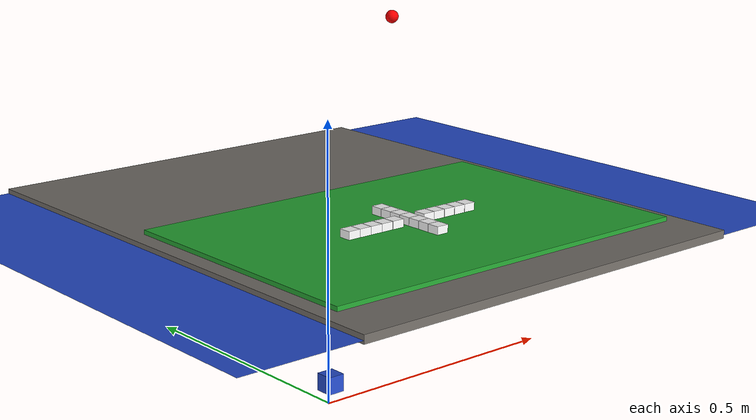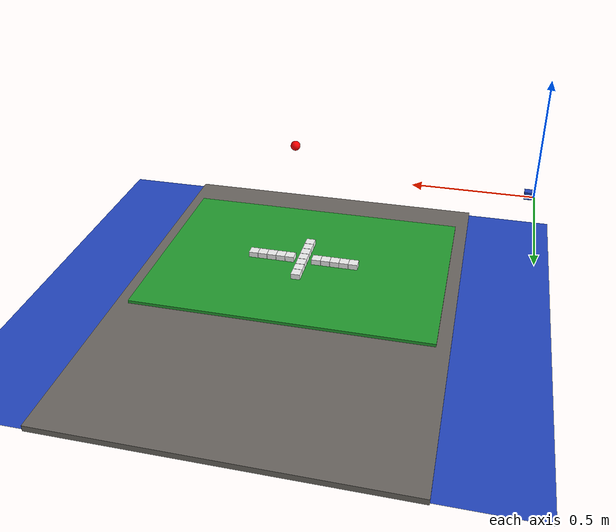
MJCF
<?xml version="1.0" encoding="utf-8"?>
<mujoco>
	<compiler angle="radian" coordinate="local" meshdir="../stls/dobot" texturedir="../textures"></compiler>
	<option solver="Newton" timestep="0.002">
		<flag warmstart="enable"></flag>
	</option>
	<visual>
		<quality shadowsize="4096"></quality>
	</visual>

	<size njmax="8500" nconmax="4500"></size>

	<include file="shared_pick.xml"></include>

	<worldbody>

		<include file="base.xml"></include>

		<include file="robot_pick.xml"></include>

		<body name="object0" pos="0.025 0.025 0.025">
			<joint name="object0:joint" type="free" damping="0.01"></joint>
			<geom size="0.0160 0.0160 0.0160" type="box" name="object0" material="blue_block_mat" mass="0.8" condim="6" solimp="1.0 1.0 0.01"  solref="0.01 1" ></geom>
			<site name="site:object0" pos="0 0 0" size="0.012 0.012 0.012" rgba="0 1 0 1" type="sphere"></site>
		</body>

		<body name="verticalwall" pos="0.8 0.784 0.025">
				<geom pos="0 0 0" name="object1" class="wall"/>
				<geom pos="0 -0.033 0" name="object2" class="wall"/>
				<geom pos="0 -0.066 0" name="object4" class="wall"/>
				<geom pos="0 -0.099 0" name="object5" class="wall"/>
				<geom pos="0 -0.132 0" name="object6" class="wall"/>
				<geom pos="0 -0.165 0" name="object7" class="wall"/>
				<geom pos="0 -0.198 0" name="object8" class="wall"/>
		</body>

		<body name="horizontalwall1" pos="0.62 0.685 0.025">
				<geom pos="0 0 0" name="object9" class="wall"/>
				<geom pos="0.033 0 0" name="object10" class="wall"/>
				<geom pos="0.066 0 0" name="object11" class="wall"/>
				<geom pos="0.099 0 0" name="object12" class="wall"/>
				<geom pos="0.132 0 0" name="object13" class="wall"/>
		</body>

		<body name="horizontalwall2" pos="0.98 0.685 0.025">
				<geom pos="0 0 0" name="object14" class="wall"/>
				<geom pos="-0.033 0 0" name="object15" class="wall"/>
				<geom pos="-0.066 0 0" name="object16" class="wall"/>
				<geom pos="-0.099 0 0" name="object17" class="wall"/>
				<geom pos="-0.132 0 0" name="object18" class="wall"/>
		</body>

	</worldbody>

</mujoco>

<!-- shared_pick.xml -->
<mujoco>
    <asset>
        <texture type="skybox" builtin="gradient" rgb1="0 0 0" rgb2="0.5 0.5 1" width="32" height="32"></texture>
        <texture name="texture_block" file="block.png" gridsize="3 4" gridlayout=".U..LFRB.D.."></texture>
        <texture name="red_block" file="block_red.png" gridsize="3 4" gridlayout=".U..LFRB.D.."></texture>
        <texture name="yellow_block" file="block_yellow.png" gridsize="3 4" gridlayout=".U..LFRB.D.."></texture>
        <texture name="green_block" file="block_green.png" gridsize="3 4" gridlayout=".U..LFRB.D.."></texture>
        <texture name="blue_block" file="block_blue.png" gridsize="3 4" gridlayout=".U..LFRB.D.."></texture>
        <texture name="pink_block" file="block_pink.png" gridsize="3 4" gridlayout=".U..LFRB.D.."></texture>
        <texture name="magenta_block" file="block_magenta.png" gridsize="3 4" gridlayout=".U..LFRB.D.."></texture>
        <texture name="dark_blue_block" file="block_dark_blue.png" gridsize="3 4" gridlayout=".U..LFRB.D.."></texture>
        <texture name="dark_green_block" file="block_dark_green.png" gridsize="3 4" gridlayout=".U..LFRB.D.."></texture>
        <texture name="arm_tex" file="arm.png" type="2d"></texture>
        <texture name="base_tex" file="base.png" type="2d"></texture>
        <texture name="base_blue_tex" file="base_blue.png" type="2d"></texture>
        <texture name="base_green_tex" file="base_green.png" type="2d"></texture>
        <texture name="gripper_tex" file="gripper.png" type="2d"></texture>

        <material name="table_mat" specular="0" shininess="0.5" reflectance="0" rgba="0.6 0.6 0.6 1" texture="base_tex"></material>
        <material name="floor_mat" specular="0" shininess="0.5" reflectance="0" rgba="1 1 1 1" texture="base_blue_tex"></material>
        <material name="tray_mat" specular="0" shininess="0.5" reflectance="0" rgba="1 1 1 1" texture="base_green_tex"></material>
        <material name="block_mat" specular="0" shininess="0.5" reflectance="0" rgba="1 1 1 1" texture="texture_block"></material>
        <material name="red_block_mat" specular="0" shininess="0.5" reflectance="0" rgba="1 1 1 1" texture="red_block"></material>
        <material name="yellow_block_mat" specular="0" shininess="0.5" reflectance="0" rgba="1 1 1 1" texture="yellow_block"></material>
        <material name="green_block_mat" specular="0" shininess="0.5" reflectance="0" rgba="1 1 1 1" texture="green_block"></material>
        <material name="blue_block_mat" specular="0" shininess="0.5" reflectance="0" rgba="1 1 1 1" texture="blue_block"></material>
        <material name="dark_blue_block_mat" specular="0" shininess="0.5" reflectance="0" rgba="1 1 1 1" texture="dark_blue_block"></material>
        <material name="dark_green_block_mat" specular="0" shininess="0.5" reflectance="0" rgba="1 1 1 1" texture="dark_green_block"></material>
        <material name="pink_block_mat" specular="0" shininess="0.5" reflectance="0" rgba="1 1 1 1" texture="pink_block"></material>
        <material name="magenta_block_mat" specular="0" shininess="0.5" reflectance="0" rgba="1 1 1 1" texture="magenta_block"></material>
        <material name="puck_mat" specular="0" shininess="0.5" reflectance="0" rgba="0.2 0.2 0.2 1" texture="base_tex"></material>
        <material name="dobot_mat" shininess="0.03" specular="0.4" rgba ="1 1 1 0"></material>
        <material name="arm_mat" shininess="0.03" specular="0.4" texture="arm_tex"></material>
        <material name="gripper_mat" shininess="0.03" specular="0.4" texture="gripper_tex"></material>

        <mesh file="fpart1.stl" name="dobot:rear_arm_link" scale="0.002 0.002 0.002"></mesh>
		<mesh file="fpart2.stl" name="dobot:front_arm_link" scale="0.002 0.002 0.002"></mesh>
		<mesh file="fpart3.stl" name="dobot:lift_link" scale="0.002 0.002 0.002"></mesh>
		<mesh file="fpart4.stl" name="dobot:base_link" scale="0.002 0.002 0.002"></mesh>
        <mesh file="gripper_base.stl" name="dobot:gripper_link" scale="0.002 0.002 0.002"></mesh>
		<mesh file="leftArm.stl" name="dobot:l_gripper_link" scale="0.002 0.002 0.002"></mesh>
		<mesh file="rightArm.stl" name="dobot:r_gripper_link" scale="0.002 0.002 0.002"></mesh>

    </asset>

    <equality>
        <weld body1="dobot:mocap" body2="dobot:gripper_link" solimp="0.9 0.95 0.001" solref="0.02 1"></weld>
    </equality>

    <default>
        <default class="dobot:fetch">
            <geom margin="0.001" material="dobot_mat" rgba="1 1 1 1" solimp="0.99 0.99 0.01" solref="0.01 1" type="mesh" user="0" group="1"></geom>
            <joint armature="1" damping="50" frictionloss="0" stiffness="0"></joint>

            <default class="dobot:fetchGripper">
                <geom condim="4" margin="0.001" type="box" user="0" rgba="0.356 0.361 0.376 1.0"></geom>
                <joint armature="100" damping="1000" limited="true" solimplimit="0.99 0.999 0.01" solreflimit="0.01 1" type="slide"></joint>
            </default>

            <default class="wall">
                <geom size="0.0160 0.0160 0.0160" type="box" condim="6" material="yellow_block_mat" mass="0.8" solimp="1.0 1.0 0.01"  solref="0.01 1" ></geom>
            </default>
            <default class="dobot:white">
                <geom rgba="0.9 0.9 0.9 .0"></geom>
            </default>
            <default class="dobot:black">
                <geom rgba="0.2 0.2 0.2 1.0"></geom>
            </default>
        </default>
    </default>
</mujoco>

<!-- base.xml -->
<mujoco>
    <geom name="floor0" pos="0.8 0.9 0" size="0.85 0.70 1" type="plane" condim="3" material="floor_mat"></geom>
    <body name="floor0" pos="0.8 0.75 0">
        <site name = "target0" type="sphere" pos="0 0 0.5" size="0.015" rgba="1 0 0 1" /><!-- End Goal: Red -->
        <!--site name = "subgoal_0" type="sphere" pos="0 0 0.5" size="0.015" rgba="1 0 1 1" /--><!-- Subgoal 1: Purple -->
        <!--site name = "subgoal_1" type="sphere" pos="0 0 0.5" size="0.015" rgba="0 1 0 0" /--><!-- Subgoal 2: Green -->
        <!--site name = "subgoal_2" type="sphere" pos="0 0 0.5" size="0.015" rgba="0.5 0.5 0.5 0" /--><!-- Subgoal 3: Gray -->
        <!--site name = "subgoal_3" type="sphere" pos="0 0 0.5" size="0.015" rgba="1 1 1 0" /--><!-- Subgoal 4: White -->
        <!--site name = "subgoal_4" type="sphere" pos="0 0 0.5" size="0.015" rgba="0 0 0 0" /--><!-- Subgoal 5: Black -->
        <body pos="0 0.15 0" name="table0">
            <geom name="table0" size="0.55 0.7 0.01" type="box" mass="2000" material="table_mat"></geom>
            <body name="tray" pos = "0 -0.215 0.01">
                <geom name="tray_base" size="0.5060 0.350 0.011" type="box" mass="300" material="tray_mat"></geom>
            </body>
        </body>
        <camera axisangle="1 -1 -1 0" fovy="40" name="webcam" pos="0 0 1.0" mode="fixed"></camera>
    </body>

    <light directional="false" ambient="0.2 0.2 0.2" diffuse="0.8 0.8 0.8" specular="0.3 0.3 0.3" castshadow="false" pos="0.8 0.9 3" name="light0"></light>

</mujoco>

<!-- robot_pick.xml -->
<mujoco>
	<body mocap="true" name="dobot:mocap" pos="1 1 1">
		<geom conaffinity="0" contype="0" pos="0 0 0" rgba="0 0.5 0 0." size="0.005 0.005 0.005" type="box"></geom>
		<geom conaffinity="0" contype="0" pos="0 0 0" rgba="0 0.5 0 0." size="0.2 0.005 0.005" type="box"></geom>
		<geom conaffinity="0" contype="0" pos="0 0 0" rgba="0 0.5 0 0." size="0.005 0.2 0.001" type="box"></geom>
		<geom conaffinity="0" contype="0" pos="0 0 0" rgba="0 0.5 0 0." size="0.005 0.005 0.2" type="box"></geom>

	</body>
	<body childclass="dobot:fetch" name="dobot:base_link" pos="0 0 0.1" euler="0 0 0">
		<joint armature="0.0001" axis="1 0 0" damping="1e+11" name="dobot:slide0" pos="0 0 0" type="slide"></joint>
		<joint armature="0.0001" axis="0 1 0" damping="1e+11" name="dobot:slide1" pos="0 0 0" type="slide"></joint>
		<joint armature="0.0001" axis="0 0 1" damping="1e+11" name="dobot:slide2" pos="0 0 0" type="slide"></joint>
			<inertial diaginertia="1.2869 1.2236 0.9868" mass="1.5" pos="0 0 0"></inertial>
			<geom mesh="dobot:base_link" name="dobot:base_link" material="arm_mat" class="dobot:white"></geom>
			<body name="dobot:lift_link" pos="0 0 0.066" euler="0 0 0">
				<inertial diaginertia="1.2869 1.2236 0.9868" mass="0.5" pos="0 0 0"></inertial>
				<geom mesh="dobot:lift_link" name="dobot:lift_link" material="arm_mat" class="dobot:white"></geom>
				<joint name="dobot:base_pan" type="hinge" pos="0 0 0" axis="0 0 1" range="-1.57 1.57" limited="true"/>
				<body name="dobot:rear_arm_link" pos="0 0 0.16" euler="0 0 0">
					<inertial diaginertia="1.2869 1.2236 0.9868" mass="0.85" pos="0 0 0" ></inertial>
					<geom mesh="dobot:rear_arm_link" name="dobot:rear_arm_link" pos = "0 0 0" material="arm_mat" class="dobot:white"></geom>
					<joint name="dobot:base_tilt" type="hinge" pos="0 0 0" axis="1 0 0" range="0 1.4835" limited="true"/>
					<body name="dobot:front_arm_link" pos="0 -0.098 0.246" euler="0 0 0">
						<inertial diaginertia="1.2869 1.2236 0.9868" mass="0.85" pos="0 0 0"></inertial>
						<geom mesh="dobot:front_arm_link" name="dobot:front_arm_link" pos = "0 0 0" material="arm_mat" class="dobot:white"></geom>
						<joint name="dobot:elbow_flex" type="hinge" pos="0 0 0" axis="1 0 0" range="-1.658 0.174" limited="true"/>
						<body name="dobot:gripper_link" pos="0 -0.26 -0.136" euler="0 0 0">
							<inertial diaginertia="1.2869 1.2236 0.9868" mass="0.3294" pos="0 0 0"></inertial>
							<geom mesh="dobot:gripper_link" name="dobot:gripper_link" pos = "0 0 0" material="gripper_mat" class="dobot:white"></geom>
							<joint name="dobot:wrist_flex" type="hinge" pos="0 0 0" axis="1 0 0"/>
							<body name="dobot:gripper">
								<inertial diaginertia="1.2869 1.2236 0.9868" mass="0.1" pos="0 0 0"></inertial>
								<joint name="dobot:gripper_rot" type="hinge" pos="0 -0.123 -0.12" axis="0 0 1"/>
								<site name="dobot:grip" pos="0 -0.123 -0.153" rgba="0 0 0 0" size="0.02 0.02 0.02"></site>
								<body name="dobot:support">
									<geom type="cylinder" size="0.01 0.005" pos="0 -0.123 -0.075" material="gripper_mat" class="dobot:white"></geom>
									<geom type="box" size="0.01 0.005 0.025" pos="0 -0.123 -0.090" material="gripper_mat" class="dobot:white"></geom>
									<geom type="cylinder" size="0.005 0.055" pos="0 -0.123 -0.09" euler="1.57 0 1.57" material="table_mat" class="dobot:white"></geom>
									<body childclass="dobot:fetchGripper" name="dobot:l_gripper_link" pos="0 -0.1425 -0.09" euler="0 0 0">
										<inertial diaginertia="1.2869 1.2236 0.9868" mass="0.3294" pos="0 0 0"></inertial>
										<geom type="cylinder" size="0.01 0.01" pos="0 0 0" euler="1.57 0 1.57" material="gripper_mat" class="dobot:white"></geom>
										<geom mesh="dobot:l_gripper_link" name="dobot:l_gripper_link" pos = "0 0 0" material="gripper_mat" class="dobot:white" condim="6" solimp="1.0 1.0 0.01"></geom>
										<joint name="dobot:l_gripper_joint" type="slide" axis="0 1 0" limited="true" range="-0.025 0"/>
									</body>
									<body childclass="dobot:fetchGripper" name="dobot:r_gripper_link" pos="0 -0.1025 -0.09" euler="0 0 0">
										<inertial diaginertia="1.2869 1.2236 0.9868" mass="0.3294" pos="0 0 0"></inertial>
										<geom type="cylinder" size="0.01 0.01" pos="0 0.0005 0" euler="1.57 0 1.57" material="gripper_mat" class="dobot:white"></geom>
										<geom mesh="dobot:r_gripper_link" name="dobot:r_gripper_link" pos = "0 0 0" material="gripper_mat" class="dobot:white" condim="6" solimp="1.0 1.0 0.01"></geom>
										<joint name="dobot:r_gripper_joint" type="slide" axis="0 1 0" limited="true" range = "0 0.025"/>
									</body>
								</body>
							</body>
						</body>
					</body>
				</body>
			</body>
		</body>

</mujoco>
